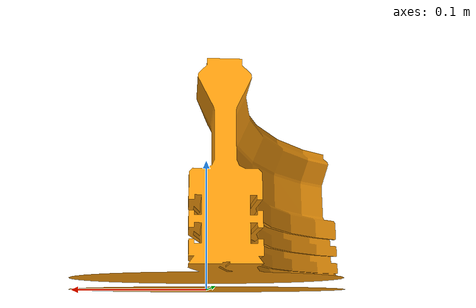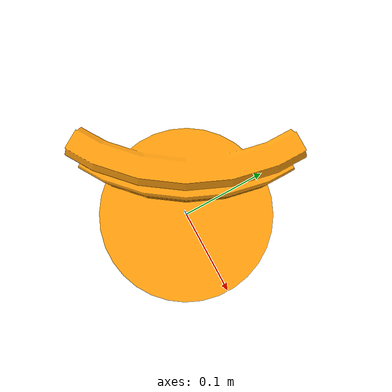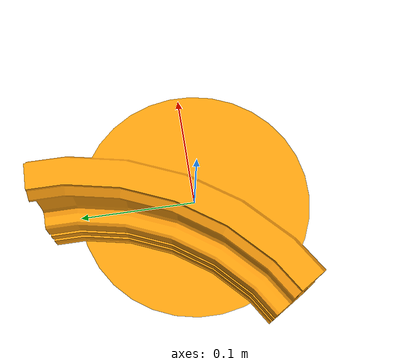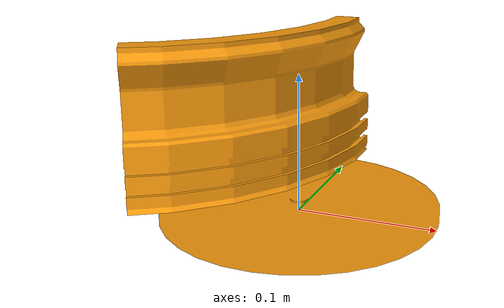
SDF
<?xml version="1.0"?>
<sdf version="1.9">
  <model name="rail_switch_3pos_droit">
    <static>true</static>
    <link name="blade_link">
      <kinematic>true</kinematic>
      <gravity>false</gravity>
      <inertial>
        <mass>0.1</mass>
        <inertia>
          <ixx>0.001</ixx>
          <ixy>0.0</ixy>
          <ixz>0.0</ixz>
          <iyy>0.001</iyy>
          <iyz>0.0</iyz>
          <izz>0.001</izz>
        </inertia>
      </inertial>

      <visual name="blade_visual">
        <geometry>
          <mesh>
            <uri>model://rail_switch_3pos_droit/meshes/aiguillage3.stl</uri>
            <scale>39.37 39.37 39.37</scale>
          </mesh>
        </geometry>
        <material>
          <ambient>1.0 0.62 0.05 1</ambient>
          <diffuse>1.0 0.62 0.05 1</diffuse>
          <specular>0.25 0.12 0.02 1</specular>
          <emissive>0.04 0.02 0.0 1</emissive>
        </material>
      </visual>
      <collision name="blade_collision">
        <geometry>
          <mesh>
            <uri>model://rail_switch_3pos_droit/meshes/aiguillage3.stl</uri>
            <scale>39.37 39.37 39.37</scale>
          </mesh>
        </geometry>
        <surface>
          <friction>
            <ode>
              <mu>0.35</mu>
              <mu2>0.35</mu2>
            </ode>
            <bullet>
              <friction>0.35</friction>
              <friction2>0.35</friction2>
              <rolling_friction>0.005</rolling_friction>
            </bullet>
          </friction>
          <contact>
            <collide_bitmask>0x0001</collide_bitmask>
            <ode>
              <kp>2000000</kp>
              <kd>50</kd>
              <max_vel>0.1</max_vel>
              <min_depth>0.001</min_depth>
            </ode>
            <bullet>
              <kp>2000000</kp>
              <kd>50</kd>
            </bullet>
          </contact>
        </surface>
      </collision>
    </link>
  </model>
</sdf>
